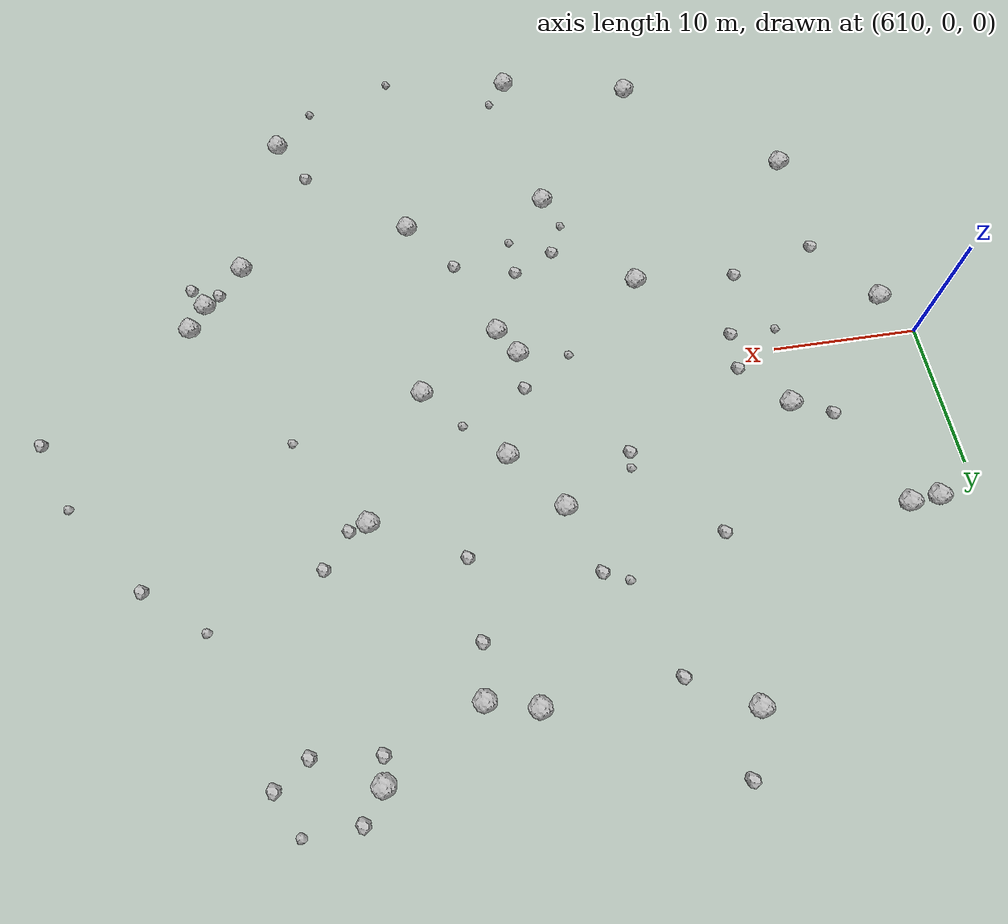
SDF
<sdf version="1.6">
 <world name="default">
  <include><uri>model://sun</uri></include>
  <model name="rock1_16_3">
   <include><uri>model://rock1</uri><pose>644.0767115069536 -13.928504544056764 0.5 0 0 0</pose></include>
  </model>
  <model name="rock1_16_4">
   <include><uri>model://rock1</uri><pose>620.2197625877418 4.231012132738812 0.5 0 0 0</pose></include>
  </model>
  <model name="rock1_16_5">
   <include><uri>model://rock1</uri><pose>612.6992821893687 12.110929784234322 0.5 0 0 0</pose></include>
  </model>
  <model name="rock1_16_6">
   <include><uri>model://rock1</uri><pose>648.9668288752404 8.538245449093992 0.5 0 0 0</pose></include>
  </model>
  <model name="rock1_16_7">
   <include><uri>model://rock1</uri><pose>658.8617781464759 -9.309958111240565 0.5 0 0 0</pose></include>
  </model>
  <model name="rock1_16_8">
   <include><uri>model://rock1</uri><pose>636.4114695055179 9.268245335507828 0.5 0 0 0</pose></include>
  </model>
  <model name="rock1_16_9">
   <include><uri>model://rock1</uri><pose>637.668534293425 -2.246934814656491 0.5 0 0 0</pose></include>
  </model>
  <model name="rock1_16_10">
   <include><uri>model://rock1</uri><pose>614.6785334787905 12.246358204365492 0.5 0 0 0</pose></include>
  </model>
  <model name="rock1_16_11">
   <include><uri>model://rock1</uri><pose>656.2067576735584 -12.12652053983787 0.5 0 0 0</pose></include>
  </model>
  <model name="rock1_16_12">
   <include><uri>model://rock1</uri><pose>615.4225081778411 -15.826136905508132 0.5 0 0 0</pose></include>
  </model>
  <model name="rock1_16_13">
   <include><uri>model://rock1</uri><pose>633.8181984374095 -14.97570582932367 0.5 0 0 0</pose></include>
  </model>
  <model name="rock1_16_14">
   <include><uri>model://rock1</uri><pose>643.2365173358489 20.47191701613169 0.5 0 0 0</pose></include>
  </model>
  <model name="rock1_16_15">
   <include><uri>model://rock1</uri><pose>628.4423641847212 -6.923240623334408 0.5 0 0 0</pose></include>
  </model>
  <model name="rock1_16_16">
   <include><uri>model://rock1</uri><pose>649.500082044399 24.20858424763523 0.5 0 0 0</pose></include>
  </model>
  <model name="rock1_16_17">
   <include><uri>model://rock1</uri><pose>638.8433444948486 -4.244405004189332 0.5 0 0 0</pose></include>
  </model>
  <model name="rock1_16_18">
   <include><uri>model://rock1</uri><pose>653.0916996141184 -23.11147048287772 0.5 0 0 0</pose></include>
  </model>
  <model name="rock1_16_19">
   <include><uri>model://rock1</uri><pose>640.1046189560392 21.313856866709003 0.5 0 0 0</pose></include>
  </model>
  <model name="rock1_16_20">
   <include><uri>model://rock1</uri><pose>627.4442433065208 23.139358448688384 0.5 0 0 0</pose></include>
  </model>
  <model name="rock1_16_21">
   <include><uri>model://rock1</uri><pose>644.5327841378962 -0.17014066142243678 0.5 0 0 0</pose></include>
  </model>
  <model name="rock1_16_22">
   <include><uri>model://rock1</uri><pose>611.6983370428251 -3.0189257528223195 0.5 0 0 0</pose></include>
  </model>
  <model name="rock1_16_23">
   <include><uri>model://rock1</uri><pose>639.522897681848 5.197942899502571 0.5 0 0 0</pose></include>
  </model>
  <model name="rock1_16_24">
   <include><uri>model://rock1</uri><pose>659.9413524633027 -7.526169038928739 0.5 0 0 0</pose></include>
  </model>
  <model name="rock1_16_25">
   <include><uri>model://rock1</uri><pose>634.925282505311 -26.896987095869644 0.5 0 0 0</pose></include>
  </model>
  <model name="rock1_16_26">
   <include><uri>model://rock1</uri><pose>625.5701618783555 -24.78904185806781 0.5 0 0 0</pose></include>
  </model>
  <model name="rock2_16_0">
   <include><uri>model://rock2</uri><pose>669.6953719791102 -0.053917447854335165 0.3 0 0 0</pose></include>
  </model>
  <model name="rock2_16_1">
   <include><uri>model://rock2</uri><pose>649.3482205539983 22.555259085602465 0.3 0 0 0</pose></include>
  </model>
  <model name="rock2_16_2">
   <include><uri>model://rock2</uri><pose>621.3249061238931 -6.3323423790309015 0.3 0 0 0</pose></include>
  </model>
  <model name="rock2_16_3">
   <include><uri>model://rock2</uri><pose>628.9187594751377 26.99468585159717 0.3 0 0 0</pose></include>
  </model>
  <model name="rock2_16_4">
   <include><uri>model://rock2</uri><pose>636.8199175940815 -8.859276439755842 0.3 0 0 0</pose></include>
  </model>
  <model name="rock2_16_5">
   <include><uri>model://rock2</uri><pose>637.640102060652 0.4772197699274585 0.3 0 0 0</pose></include>
  </model>
  <model name="rock2_16_6">
   <include><uri>model://rock2</uri><pose>622.8187738578936 -1.5622694436783817 0.3 0 0 0</pose></include>
  </model>
  <model name="rock2_16_7">
   <include><uri>model://rock2</uri><pose>633.9283279276432 -10.202959015442936 0.3 0 0 0</pose></include>
  </model>
  <model name="rock2_16_8">
   <include><uri>model://rock2</uri><pose>651.9580570113393 11.155267067377437 0.3 0 0 0</pose></include>
  </model>
  <model name="rock2_16_9">
   <include><uri>model://rock2</uri><pose>615.2101698975978 -7.903337409036158 0.3 0 0 0</pose></include>
  </model>
  <model name="rock2_16_10">
   <include><uri>model://rock2</uri><pose>642.8607716054521 17.034546321538826 0.3 0 0 0</pose></include>
  </model>
  <model name="rock2_16_11">
   <include><uri>model://rock2</uri><pose>617.5391178117019 5.386504458769991 0.3 0 0 0</pose></include>
  </model>
  <model name="rock2_16_12">
   <include><uri>model://rock2</uri><pose>643.0406500249537 11.695252026652582 0.3 0 0 0</pose></include>
  </model>
  <model name="rock2_16_13">
   <include><uri>model://rock2</uri><pose>659.7745539314985 -10.763477828291268 0.3 0 0 0</pose></include>
  </model>
  <model name="rock2_16_14">
   <include><uri>model://rock2</uri><pose>641.0986781261743 -10.03175971236984 0.3 0 0 0</pose></include>
  </model>
  <model name="rock2_16_15">
   <include><uri>model://rock2</uri><pose>626.7857954936253 12.443300979144155 0.3 0 0 0</pose></include>
  </model>
  <model name="rock2_16_16">
   <include><uri>model://rock2</uri><pose>631.4397688633641 20.82691737137617 0.3 0 0 0</pose></include>
  </model>
  <model name="rock2_16_17">
   <include><uri>model://rock2</uri><pose>650.8099668911094 26.068182930025216 0.3 0 0 0</pose></include>
  </model>
  <model name="rock2_16_18">
   <include><uri>model://rock2</uri><pose>655.6397228496988 23.549960037777673 0.3 0 0 0</pose></include>
  </model>
  <model name="rock2_16_19">
   <include><uri>model://rock2</uri><pose>634.9218404791403 13.861301990618905 0.3 0 0 0</pose></include>
  </model>
  <model name="rock2_16_20">
   <include><uri>model://rock2</uri><pose>653.5545535386206 22.07851387161825 0.3 0 0 0</pose></include>
  </model>
  <model name="rock2_16_21">
   <include><uri>model://rock2</uri><pose>622.9841022709394 1.1490119261003358 0.3 0 0 0</pose></include>
  </model>
  <model name="rock2_16_22">
   <include><uri>model://rock2</uri><pose>663.0853249377054 10.883529139618076 0.3 0 0 0</pose></include>
  </model>
  <model name="rock2_16_23">
   <include><uri>model://rock2</uri><pose>657.8583481289199 -10.063504457943921 0.3 0 0 0</pose></include>
  </model>
  <model name="rock2_16_24">
   <include><uri>model://rock2</uri><pose>631.5651943038666 6.162731588269452 0.3 0 0 0</pose></include>
  </model>
  <model name="rock2_16_25">
   <include><uri>model://rock2</uri><pose>651.1738677377065 -19.645512924310765 0.3 0 0 0</pose></include>
  </model>
  <model name="rock2_16_26">
   <include><uri>model://rock2</uri><pose>650.2093589568633 8.882314462508035 0.3 0 0 0</pose></include>
  </model>
  <model name="rock3_16_0">
   <include><uri>model://rock3</uri><pose>631.678633860801 7.207384283240856 0.2 0 0 0</pose></include>
  </model>
  <model name="rock3_16_1">
   <include><uri>model://rock3</uri><pose>634.1877142835722 -1.7061666942781812 0.2 0 0 0</pose></include>
  </model>
  <model name="rock3_16_2">
   <include><uri>model://rock3</uri><pose>636.8241422113429 -11.612298516998315 0.2 0 0 0</pose></include>
  </model>
  <model name="rock3_16_3">
   <include><uri>model://rock3</uri><pose>654.2284055477614 26.17593076960648 0.2 0 0 0</pose></include>
  </model>
  <model name="rock3_16_4">
   <include><uri>model://rock3</uri><pose>632.8542841930073 -12.550963303772154 0.2 0 0 0</pose></include>
  </model>
  <model name="rock3_16_5">
   <include><uri>model://rock3</uri><pose>650.4437826755499 -26.091974320188907 0.2 0 0 0</pose></include>
  </model>
  <model name="rock3_16_6">
   <include><uri>model://rock3</uri><pose>633.3024036815976 14.545246539712501 0.2 0 0 0</pose></include>
  </model>
  <model name="rock3_16_7">
   <include><uri>model://rock3</uri><pose>642.1197379944797 2.59803642375455 0.2 0 0 0</pose></include>
  </model>
  <model name="rock3_16_8">
   <include><uri>model://rock3</uri><pose>619.5757852661386 -1.6145478915284102 0.2 0 0 0</pose></include>
  </model>
  <model name="rock3_16_9">
   <include><uri>model://rock3</uri><pose>636.3196412500829 -25.01870791319215 0.2 0 0 0</pose></include>
  </model>
  <model name="rock3_16_10">
   <include><uri>model://rock3</uri><pose>659.1650493325 13.970322750819939 0.2 0 0 0</pose></include>
  </model>
  <model name="rock3_16_11">
   <include><uri>model://rock3</uri><pose>653.3648445410339 2.180246955032729 0.2 0 0 0</pose></include>
  </model>
  <model name="rock3_16_12">
   <include><uri>model://rock3</uri><pose>667.7441379293707 4.691660374219417 0.2 0 0 0</pose></include>
  </model>
  <model name="rock3_16_13">
   <include><uri>model://rock3</uri><pose>644.2067819968518 -28.32138584837179 0.2 0 0 0</pose></include>
  </model>
 </world>
</sdf>
